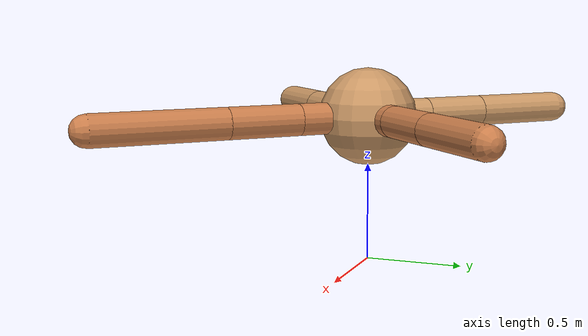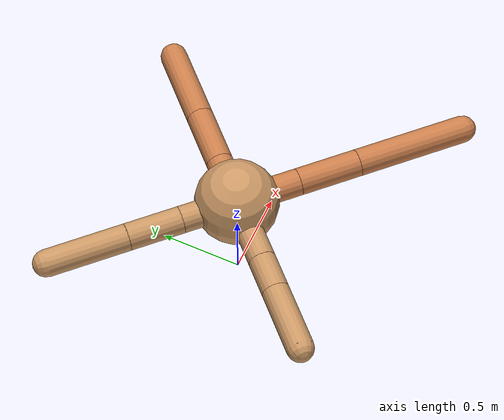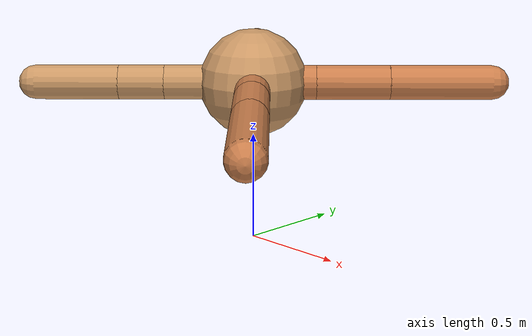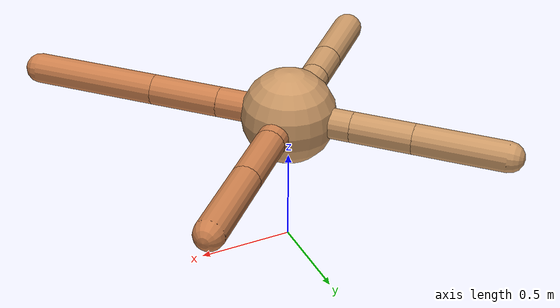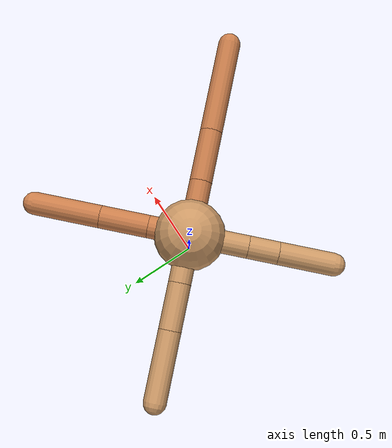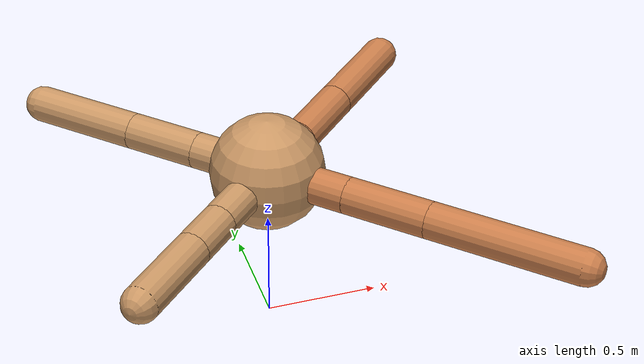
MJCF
<mujoco model="ant">
  <compiler angle="degree" coordinate="local" inertiafromgeom="true" />
  <option integrator="RK4" timestep="0.01" />
  <custom>
    <numeric data="0.0 0.0 0.55 1.0 0.0 0.0 0.0 0.0 1.0 0.0 -1.0 0.0 -1.0 0.0 1.0" name="init_qpos" />
  </custom>
  <default>
    <joint armature="1" damping="1" limited="true" />
    <geom conaffinity="0" condim="3" density="5.0" friction="1.5 0.1 0.1" margin="0.01" rgba="0.8 0.6 0.4 1" />
  </default>
  <worldbody>
    <body name="torso" pos="0 0 0.75">
      <geom name="torso_geom" pos="0 0 0" size="0.25" type="sphere" />

      <body name="front_left_leg" pos="0 0 0">
        <geom fromto="0.0 0.0 0.0 0.20644190678583116 0.20644190678583116 0.0" name="aux_1_geom" size="0.08" type="capsule" rgba=".8 .5 .3 1" />
        <body name="aux_1" pos="0.20644190678583116 0.20644190678583116 0.0">
          <joint axis="0 0 1" name="hip_1" pos="0.0 0.0 0.0" range="-40 40" type="hinge" />
          <geom fromto="0.0 0.0 0.0 0.24113974103319202 0.24113974103319202 0.0" name="left_leg_geom" size="0.08" type="capsule" rgba=".8 .5 .3 1" />
          <body pos="0.24113974103319202 0.24113974103319202 0.0" name="front_left_foot">
            <joint axis="-1 1 0" name="ankle_1" pos="0.0 0.0 0.0" range="30 100" type="hinge" />
            <geom fromto="0.0 0.0 0.0 0.33272073351829645 0.33272073351829645 0.0" name="left_ankle_geom" size="0.08" type="capsule" rgba=".8 .5 .3 1" />
          </body>
        </body>
      </body>
      <body name="front_right_leg" pos="0 0 0">
        <geom fromto="0.0 0.0 0.0 -0.24163582552197768 0.24163582552197768 0.0" name="aux_2_geom" size="0.08" type="capsule" />
        <body name="aux_2" pos="-0.24163582552197768 0.24163582552197768 0.0">
          <joint axis="0 0 1" name="hip_2" pos="0.0 0.0 0.0" range="-40 40" type="hinge" />
          <geom fromto="0.0 0.0 0.0 -0.22984415421161836 0.22984415421161836 0.0" name="right_leg_geom" size="0.08" type="capsule" />
          <body pos="-0.22984415421161836 0.22984415421161836 0.0" name="front_right_foot">
            <joint axis="1 1 0" name="ankle_2" pos="0.0 0.0 0.0" range="-100 -30" type="hinge" />
            <geom fromto="0.0 0.0 0.0 -0.34251506579884006 0.34251506579884006 0.0" name="right_ankle_geom" size="0.08" type="capsule" />
          </body>
        </body>
      </body>
      <body name="left_back_leg" pos="0 0 0">
        <geom fromto="0.0 0.0 0.0 -0.2905042114918703 -0.2905042114918703 0.0" name="aux_3_geom" size="0.08" type="capsule" />
        <body name="aux_3" pos="-0.2905042114918703 -0.2905042114918703 0.0">
          <joint axis="0 0 1" name="hip_3" pos="0.0 0.0 0.0" range="-40 40" type="hinge" />
          <geom fromto="0.0 0.0 0.0 -0.1495961576591299 -0.1495961576591299 0.0" name="back_leg_geom" size="0.08" type="capsule" />
          <body pos="-0.1495961576591299 -0.1495961576591299 0.0" name="left_back_foot">
            <joint axis="-1 1 0" name="ankle_3" pos="0.0 0.0 0.0" range="-100 -30" type="hinge" />
            <geom fromto="0.0 0.0 0.0 -0.27216132889896133 -0.27216132889896133 0.0" name="third_ankle_geom" size="0.08" type="capsule" />
          </body>
        </body>
      </body>
      <body name="right_back_leg" pos="0 0 0">
        <geom fromto="0.0 0.0 0.0 0.27058783739559245 -0.27058783739559245 0.0" name="aux_4_geom" size="0.08" type="capsule" rgba=".8 .5 .3 1" />
        <body name="aux_4" pos="0.27058783739559245 -0.27058783739559245 0.0">
          <joint axis="0 0 1" name="hip_4" pos="0.0 0.0 0.0" range="-40 40" type="hinge" />
          <geom fromto="0.0 0.0 0.0 0.26282565966685345 -0.26282565966685345 0.0" name="rightback_leg_geom" size="0.08" type="capsule" rgba=".8 .5 .3 1" />
          <body pos="0.26282565966685345 -0.26282565966685345 0.0" name="right_back_foot">
            <joint axis="1 1 0" name="ankle_4" pos="0.0 0.0 0.0" range="30 100" type="hinge" />
            <geom fromto="0.0 0.0 0.0 0.4746877746536988 -0.4746877746536988 0.0" name="fourth_ankle_geom" size="0.08" type="capsule" rgba=".8 .5 .3 1" />
          </body>
        </body>
      </body>
    </body>
  </worldbody>
  <actuator>
    <motor ctrllimited="true" ctrlrange="-1.0 1.0" joint="hip_4" gear="150" />
    <motor ctrllimited="true" ctrlrange="-1.0 1.0" joint="ankle_4" gear="150" />
    <motor ctrllimited="true" ctrlrange="-1.0 1.0" joint="hip_1" gear="150" />
    <motor ctrllimited="true" ctrlrange="-1.0 1.0" joint="ankle_1" gear="150" />
    <motor ctrllimited="true" ctrlrange="-1.0 1.0" joint="hip_2" gear="150" />
    <motor ctrllimited="true" ctrlrange="-1.0 1.0" joint="ankle_2" gear="150" />
    <motor ctrllimited="true" ctrlrange="-1.0 1.0" joint="hip_3" gear="150" />
    <motor ctrllimited="true" ctrlrange="-1.0 1.0" joint="ankle_3" gear="150" />
  </actuator>
</mujoco>
